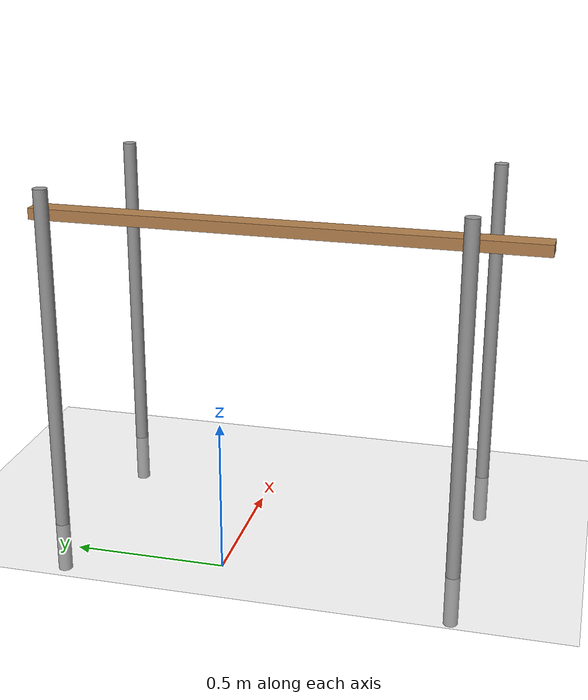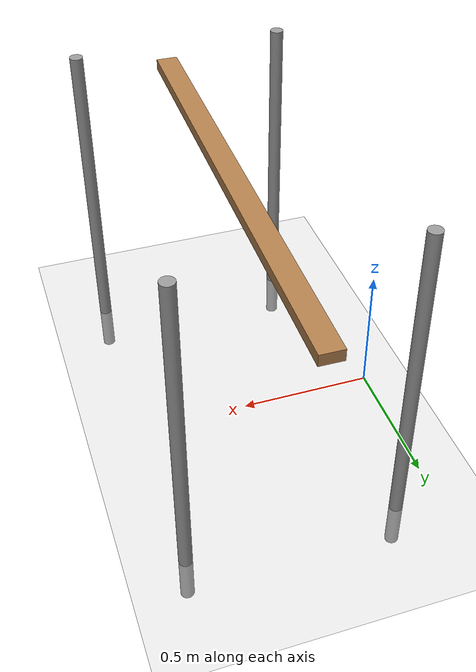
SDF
<sdf version="1.6">
 <world name="default">
  <gravity>0 0 -9.81</gravity>
  <model name="ground_plane">
   <static>1</static>
   <link name="link">
    <collision name="collision">
     <geometry><plane><normal>0 0 1</normal><size>100 100</size></plane></geometry>
     <surface><friction><ode><mu>1</mu><mu2>1</mu2></ode></friction></surface>
    </collision>
    <visual name="visual">
     <cast_shadows>0</cast_shadows>
     <geometry><plane><normal>0 0 1</normal><size>100 100</size></plane></geometry>
     <material>
      <script><uri>file://media/materials/scripts/gazebo.material</uri><name>Gazebo/Grey</name></script>
     </material>
    </visual>
   </link>
  </model>
  <light name="sun" type="directional">
   <pose>0 0 10 0 -0 0</pose>
   <diffuse>0.8 0.8 0.8 1</diffuse>
   <specular>0.2 0.2 0.2 1</specular>
   <attenuation>
    <range>1000</range>
    <constant>0.9</constant>
    <linear>0.01</linear>
    <quadratic>0.001</quadratic>
   </attenuation>
   <direction>-0.5 0.1 -0.9</direction>
  </light>
  <physics name="update_rate" default="0" type="ode">
   <real_time_update_rate>4000</real_time_update_rate>
   <max_step_size>0.00025</max_step_size>
   <max_contacts>5</max_contacts>
   <bullet>
    <solver><iters>100</iters><sor>1.55</sor><type>sequential_impulse</type></solver>
    <constraints>
     <contact_surface_layer>0.2</contact_surface_layer>
     <cfm>0.005</cfm>
     <erp>0.2</erp>
     <split_impulse>1</split_impulse>
     <split_impulse_penetration_threshold>-0.01</split_impulse_penetration_threshold>
    </constraints>
   </bullet>
   <ode>
    <solver>
     <iters>50</iters>
     <sor>1.2</sor>
     <type>quick</type>
     <use_dynamic_moi_rescaling>0</use_dynamic_moi_rescaling>
    </solver>
    <constraints>
     <contact_surface_layer>0.0002</contact_surface_layer>
     <contact_max_correcting_vel>500</contact_max_correcting_vel>
     <cfm>1e-06</cfm>
     <erp>0.3</erp>
    </constraints>
   </ode>
   <real_time_factor>1</real_time_factor>
  </physics>
  <magnetic_field>6e-06 2.3e-05 -4.2e-05</magnetic_field>
  <atmosphere type="adiabatic"/>
  <scene><ambient>0.4 0.4 0.4 1</ambient><background>0.7 0.7 0.7 1</background><shadows>1</shadows></scene>
  <spherical_coordinates>
   <surface_model>EARTH_WGS84</surface_model>
   <latitude_deg>0</latitude_deg>
   <longitude_deg>0</longitude_deg>
   <elevation>0</elevation>
   <heading_deg>0</heading_deg>
  </spherical_coordinates>
  <model name="table">
   <static>1</static>
   <link name="link">
    <collision name="surface">
     <pose>0 0 1.36 0 -0 0</pose>
     <geometry><box><size>1.8 0.08 0.0408</size></box></geometry>
     <surface><friction><ode><mu>0.3</mu><mu2>0.3</mu2></ode></friction></surface>
    </collision>
    <visual name="visual1">
     <pose>0 0 1 0 -0 0</pose>
     <geometry><box><size>1.8 0.08 0.0408</size></box></geometry>
     <material>
      <script><uri>file://media/materials/scripts/gazebo.material</uri><name>Gazebo/Wood</name></script>
     </material>
    </visual>
    <collision name="front_left_leg">
     <pose>0.68 0.38 0.5 0 -0 0</pose>
     <geometry><cylinder><radius>0.024</radius><length>1.36</length></cylinder></geometry>
    </collision>
    <visual name="front_left_leg">
     <pose>0.68 0.38 0.5 0 -0 0</pose>
     <geometry><cylinder><radius>0.024</radius><length>1.36</length></cylinder></geometry>
     <material>
      <script><uri>file://media/materials/scripts/gazebo.material</uri><name>Gazebo/Grey</name></script>
     </material>
    </visual>
    <collision name="front_right_leg">
     <pose>0.68 -0.38 0.5 0 -0 0</pose>
     <geometry><cylinder><radius>0.024</radius><length>1.36</length></cylinder></geometry>
    </collision>
    <visual name="front_right_leg">
     <pose>0.68 -0.38 0.5 0 -0 0</pose>
     <geometry><cylinder><radius>0.024</radius><length>1.36</length></cylinder></geometry>
     <material>
      <script><uri>file://media/materials/scripts/gazebo.material</uri><name>Gazebo/Grey</name></script>
     </material>
    </visual>
    <collision name="back_right_leg">
     <pose>-0.68 -0.38 0.5 0 -0 0</pose>
     <geometry><cylinder><radius>0.024</radius><length>1.36</length></cylinder></geometry>
    </collision>
    <visual name="back_right_leg">
     <pose>-0.68 -0.38 0.5 0 -0 0</pose>
     <geometry><cylinder><radius>0.024</radius><length>1.36</length></cylinder></geometry>
     <material>
      <script><uri>file://media/materials/scripts/gazebo.material</uri><name>Gazebo/Grey</name></script>
     </material>
    </visual>
    <collision name="back_left_leg">
     <pose>-0.68 0.38 0.5 0 -0 0</pose>
     <geometry><cylinder><radius>0.024</radius><length>1.36</length></cylinder></geometry>
    </collision>
    <visual name="back_left_leg">
     <pose>-0.68 0.38 0.5 0 -0 0</pose>
     <geometry><cylinder><radius>0.024</radius><length>1.36</length></cylinder></geometry>
     <material>
      <script><uri>file://media/materials/scripts/gazebo.material</uri><name>Gazebo/Grey</name></script>
     </material>
    </visual>
   </link>
   <pose>0.520527 -0.060244 0 0 -0 1.55408</pose>
  </model>
 </world>
</sdf>
